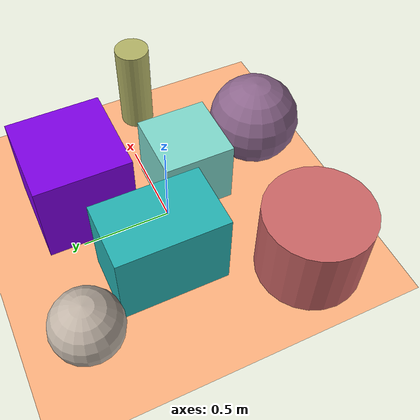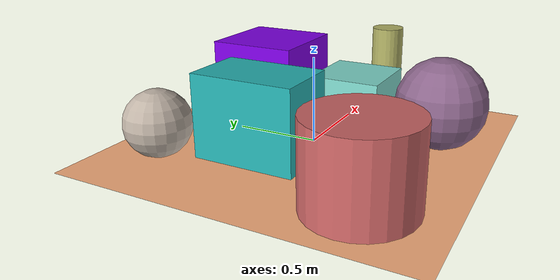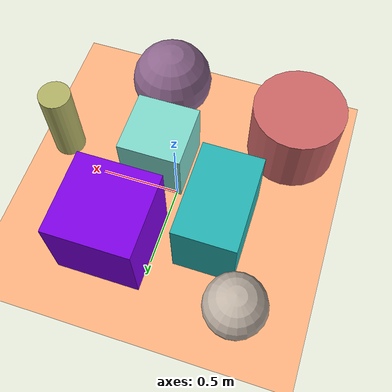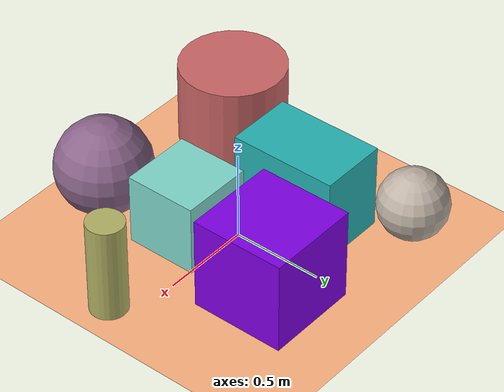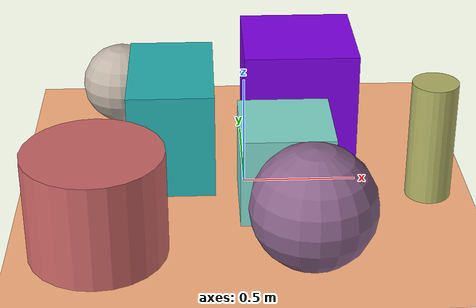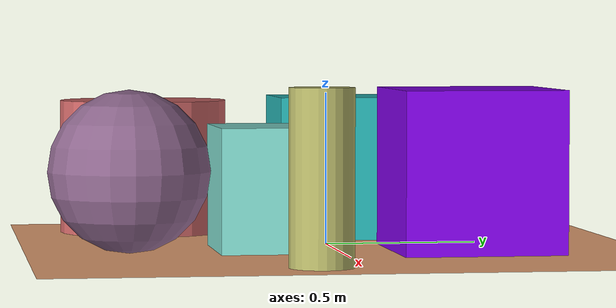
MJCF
<mujoco>
   <asset>
<texture type="skybox" builtin="gradient" rgb1="0.2 0.5 0.0" rgb2="0.2 0.0 0.2" width="256" height="256"/>
<texture name="flat_0" builtin="flat" rgb1="0.5 0.0 0.9" rgb2="0.5 0.0 0.9"  width="200" height="200"/>
<texture name="gradient_1" builtin="gradient" rgb1="0.3 0.5 0.1" rgb2="0.8 0.3 1.0" width="200" height="200"/>
<texture name="flat_2" builtin="flat" rgb1="0.8 0.4 0.4" rgb2="0.8 0.4 0.4"  width="200" height="200"/>
<texture name="checker_3" builtin="checker" type="2d" rgb1="0.9 0.5 0.0" rgb2="0.5 0.9 0.8" width="200" height="200"/>
<texture name="checker_4" builtin="checker" type="2d" rgb1="0.2 0.5 0.9" rgb2="0.1 0.9 0.5" width="200" height="200"/>
<texture name="gradient_5" builtin="gradient" rgb1="0.5 1.0 1.0" rgb2="0.5 0.7 0.6" width="200" height="200"/>
<texture name="gradient_6" builtin="gradient" rgb1="1.0 0.7 0.4" rgb2="0.5 0.7 0.9" width="200" height="200"/><material name="flat_0_mat" reflectance="0" texture="flat_0" texuniform="true"/>
<material name="gradient_1_mat" reflectance="0" texture="gradient_1" texuniform="true"/>
<material name="flat_2_mat" reflectance="0" texture="flat_2" texuniform="true"/>
<material name="checker_3_mat" reflectance="0" texrepeat="8 8" texture="checker_3" texuniform="false" />
<material name="checker_4_mat" reflectance="0" texrepeat="6 6" texture="checker_4" texuniform="false" />
<material name="gradient_5_mat" reflectance="0" texture="gradient_5" texuniform="true"/>
<material name="gradient_6_mat" reflectance="0" texture="gradient_6" texuniform="true"/>
   </asset>

   <worldbody>
      <light diffuse=".9 .9 .9" pos="0 0 3" dir="0 0 -1"/>
     <geom type="plane" size="1 1 0.1" rgba="1.0 0.7 0.5 1"/>
<geom type="box" pos="0.27 0.43 0.26" size="0.26 0.26 0.26" material="flat_0_mat" />
<geom type="sphere" pos="0.25 -0.67 0.26" size="0.26 0.26 0.26" material="gradient_1_mat" />
<geom type="cylinder" pos="-0.62 -0.55 0.23" size="0.29 0.23 0.23" material="flat_2_mat" />
<geom type="cylinder" pos="0.81 -0.14 0.27" size="0.1 0.27 0.27" material="checker_3_mat" />
<geom type="box" pos="-0.32 0.17 0.24" size="0.19 0.3 0.24" material="checker_4_mat" />
<geom type="box" pos="0.17 -0.19 0.2" size="0.2 0.2 0.2" material="gradient_5_mat" />
<geom type="sphere" pos="-0.57 0.66 0.19" size="0.19 0.19 0.19" material="gradient_6_mat" /><camera euler="60 0 180" fovy="60" name="camera_a" pos="0 -1.5 1"></camera>   </worldbody>
</mujoco>
